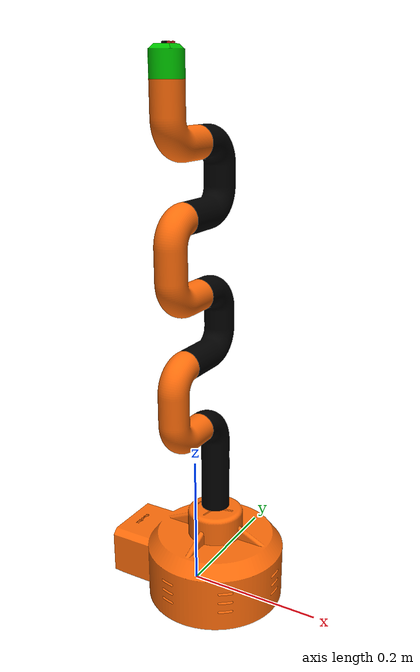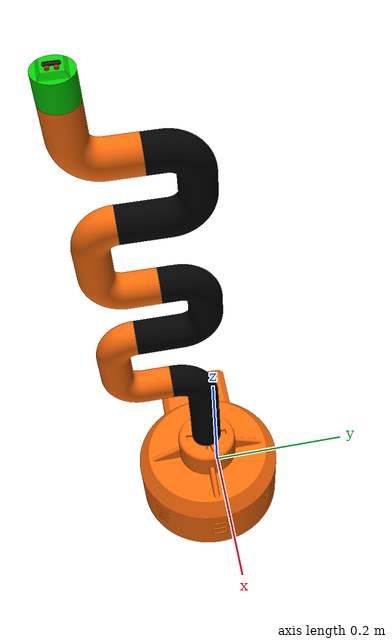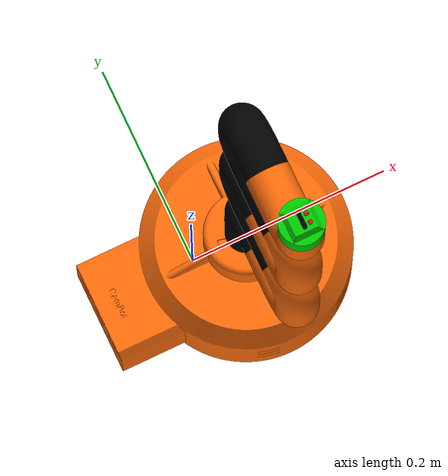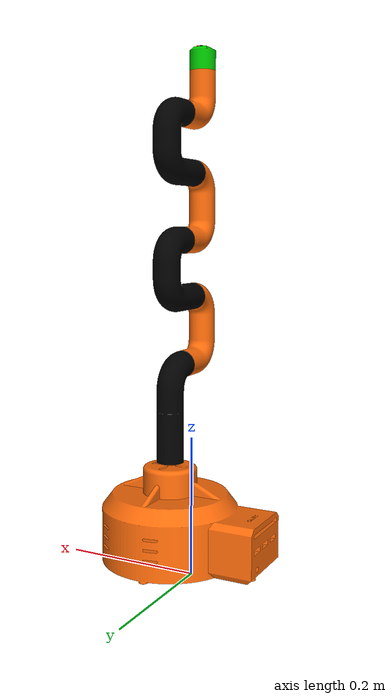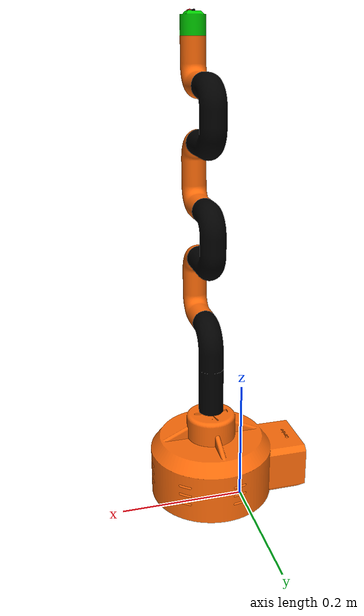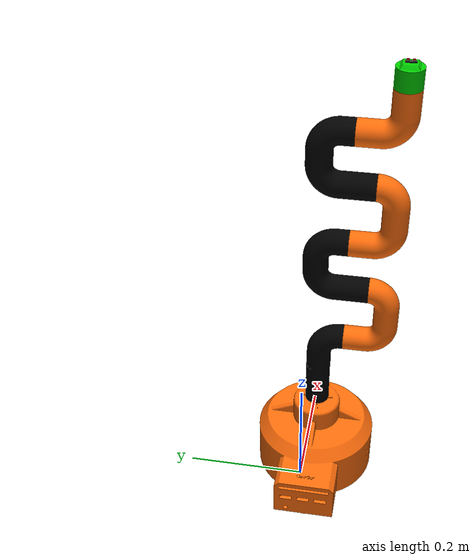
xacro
<?xml version="1.0" ?>
<robot name="cambot" xmlns:xacro="http://www.ros.org/wiki/xacro">

<xacro:include filename="$(find cambot_description)/urdf/materials.xacro" />
<xacro:include filename="$(find cambot_description)/urdf/cambot.trans" />
<xacro:include filename="$(find cambot_description)/urdf/cambot.gazebo" />

<link name="base_footprint">
</link>
<joint name="base_footprint_joint" type="fixed">
<parent link="base_footprint"/>
<child link="base_link"/>
<origin xyz="0 0 0" rpy="0 0 0"/>
</joint>

<link name="base_link">
  <inertial>
    <origin xyz="0.031870478387917095 -0.020005619593945374 0.06941706839813641" rpy="0 0 0"/>
    <mass value="2.172586468134362"/>
    <inertia ixx="0.009891" iyy="0.013269" izz="0.014819" ixy="-2e-06" iyz="-1e-06" ixz="-0.000562"/>
  </inertial>
  <visual>
    <origin xyz="0 0 0" rpy="0 0 0"/>
    <geometry>
      <mesh filename="file://$(find cambot_description)/meshes/base_link.stl" scale="0.001 0.001 0.001"/>
    </geometry>
    <material name="orange"/>
  </visual>
  <collision>
    <origin xyz="0 0 0" rpy="0 0 0"/>
    <geometry>
      <mesh filename="file://$(find cambot_description)/meshes/base_link.stl" scale="0.001 0.001 0.001"/>
    </geometry>
  </collision>
</link>

<link name="shoulder_1">
  <inertial>
    <origin xyz="-2.430504438544201e-07 -0.004991671159117982 0.056237622393101955" rpy="0 0 0"/>
    <mass value="0.18433349119517356"/>
    <inertia ixx="0.000405" iyy="0.00039" izz="5.3e-05" ixy="0.0" iyz="5.2e-05" ixz="-0.0"/>
  </inertial>
  <visual>
    <origin xyz="-0.045826 0.02 -0.18" rpy="0 0 0"/>
    <geometry>
      <mesh filename="file://$(find cambot_description)/meshes/shoulder_1.stl" scale="0.001 0.001 0.001"/>
    </geometry>
    <material name="black"/>
  </visual>
  <collision>
    <origin xyz="-0.045826 0.02 -0.18" rpy="0 0 0"/>
    <geometry>
      <mesh filename="file://$(find cambot_description)/meshes/shoulder_1.stl" scale="0.001 0.001 0.001"/>
    </geometry>
  </collision>
</link>

<link name="elbow_1">
  <inertial>
    <origin xyz="-2.43050441571524e-07 -0.04031131608347646 0.03975245049583381" rpy="0 0 0"/>
    <mass value="0.19120204614626873"/>
    <inertia ixx="0.000366" iyy="0.000305" izz="9.9e-05" ixy="-0.0" iyz="6.4e-05" ixz="0.0"/>
  </inertial>
  <visual>
    <origin xyz="-0.045826 0.07 -0.295" rpy="0 0 0"/>
    <geometry>
      <mesh filename="file://$(find cambot_description)/meshes/elbow_1.stl" scale="0.001 0.001 0.001"/>
    </geometry>
    <material name="orange"/>
  </visual>
  <collision>
    <origin xyz="-0.045826 0.07 -0.295" rpy="0 0 0"/>
    <geometry>
      <mesh filename="file://$(find cambot_description)/meshes/elbow_1.stl" scale="0.001 0.001 0.001"/>
    </geometry>
  </collision>
</link>

<link name="proximal_wrist_1">
  <inertial>
    <origin xyz="-2.4305043990618946e-07 0.05036122601814666 0.03491062753470031" rpy="0 0 0"/>
    <mass value="0.219444964102041"/>
    <inertia ixx="0.000439" iyy="0.000309" izz="0.000173" ixy="-0.0" iyz="-7.1e-05" ixz="0.0"/>
  </inertial>
  <visual>
    <origin xyz="-0.045826 0.085 -0.395" rpy="0 0 0"/>
    <geometry>
      <mesh filename="file://$(find cambot_description)/meshes/proximal_wrist_1.stl" scale="0.001 0.001 0.001"/>
    </geometry>
    <material name="black"/>
  </visual>
  <collision>
    <origin xyz="-0.045826 0.085 -0.395" rpy="0 0 0"/>
    <geometry>
      <mesh filename="file://$(find cambot_description)/meshes/proximal_wrist_1.stl" scale="0.001 0.001 0.001"/>
    </geometry>
  </collision>
</link>

<link name="intermediate_wrist_1">
  <inertial>
    <origin xyz="-2.4305044015598964e-07 -0.04031131608347617 0.039752450495832425" rpy="0 0 0"/>
    <mass value="0.1912020461462686"/>
    <inertia ixx="0.000366" iyy="0.000305" izz="9.9e-05" ixy="-0.0" iyz="6.4e-05" ixz="0.0"/>
  </inertial>
  <visual>
    <origin xyz="-0.045826 0.07 -0.48" rpy="0 0 0"/>
    <geometry>
      <mesh filename="file://$(find cambot_description)/meshes/intermediate_wrist_1.stl" scale="0.001 0.001 0.001"/>
    </geometry>
    <material name="orange"/>
  </visual>
  <collision>
    <origin xyz="-0.045826 0.07 -0.48" rpy="0 0 0"/>
    <geometry>
      <mesh filename="file://$(find cambot_description)/meshes/intermediate_wrist_1.stl" scale="0.001 0.001 0.001"/>
    </geometry>
  </collision>
</link>

<link name="distal_wrist_1">
  <inertial>
    <origin xyz="-2.4305043990618946e-07 0.05036122601814667 0.0349106275346982" rpy="0 0 0"/>
    <mass value="0.2194449641020409"/>
    <inertia ixx="0.000439" iyy="0.000309" izz="0.000173" ixy="0.0" iyz="-7.1e-05" ixz="-0.0"/>
  </inertial>
  <visual>
    <origin xyz="-0.045826 0.085 -0.58" rpy="0 0 0"/>
    <geometry>
      <mesh filename="file://$(find cambot_description)/meshes/distal_wrist_1.stl" scale="0.001 0.001 0.001"/>
    </geometry>
    <material name="black"/>
  </visual>
  <collision>
    <origin xyz="-0.045826 0.085 -0.58" rpy="0 0 0"/>
    <geometry>
      <mesh filename="file://$(find cambot_description)/meshes/distal_wrist_1.stl" scale="0.001 0.001 0.001"/>
    </geometry>
  </collision>
</link>

<link name="distal_section_1">
  <inertial>
    <origin xyz="-2.4305043969108375e-07 -0.03807586093568524 0.019860450301824484" rpy="0 0 0"/>
    <mass value="0.13796540000679278"/>
    <inertia ixx="0.000151" iyy="9.5e-05" izz="8.3e-05" ixy="-0.0" iyz="4.6e-05" ixz="-0.0"/>
  </inertial>
  <visual>
    <origin xyz="-0.045826 0.07 -0.665" rpy="0 0 0"/>
    <geometry>
      <mesh filename="file://$(find cambot_description)/meshes/distal_section_1.stl" scale="0.001 0.001 0.001"/>
    </geometry>
    <material name="orange"/>
  </visual>
  <collision>
    <origin xyz="-0.045826 0.07 -0.665" rpy="0 0 0"/>
    <geometry>
      <mesh filename="file://$(find cambot_description)/meshes/distal_section_1.stl" scale="0.001 0.001 0.001"/>
    </geometry>
  </collision>
</link>

<link name="tool_flange_1">
  <inertial>
    <origin xyz="-2.428039157509332e-07 1.232609153634101e-10 0.0062875748255590835" rpy="0 0 0"/>
    <mass value="0.036328076720912754"/>
    <inertia ixx="7e-06" iyy="7e-06" izz="7e-06" ixy="-0.0" iyz="-0.0" ixz="-0.0"/>
  </inertial>
  <visual>
    <origin xyz="-0.045826 0.125 -0.745" rpy="0 0 0"/>
    <geometry>
      <mesh filename="file://$(find cambot_description)/meshes/tool_flange_1.stl" scale="0.001 0.001 0.001"/>
    </geometry>
    <material name="green"/>
  </visual>
  <collision>
    <origin xyz="-0.045826 0.125 -0.745" rpy="0 0 0"/>
    <geometry>
      <mesh filename="file://$(find cambot_description)/meshes/tool_flange_1.stl" scale="0.001 0.001 0.001"/>
    </geometry>
  </collision>
</link>

<link name="camera_1">
  <inertial>
    <origin xyz="-2.3962317705766845e-07 3.597005395289399e-05 0.001054296634018459" rpy="0 0 0"/>
    <mass value="0.0001812213173875097"/>
    <inertia ixx="0.0" iyy="0.0" izz="0.0" ixy="-0.0" iyz="-0.0" ixz="-0.0"/>
  </inertial>
  <visual>
    <origin xyz="-0.045826 0.125 -0.77" rpy="0 0 0"/>
    <geometry>
      <mesh filename="file://$(find cambot_description)/meshes/camera_1.stl" scale="0.001 0.001 0.001"/>
    </geometry>
    <material name="black"/>
  </visual>
  <collision>
    <origin xyz="-0.045826 0.125 -0.77" rpy="0 0 0"/>
    <geometry>
      <mesh filename="file://$(find cambot_description)/meshes/camera_1.stl" scale="0.001 0.001 0.001"/>
    </geometry>
  </collision>
</link>

<joint name="camera_optical_joint" type="fixed">
<origin xyz="0 0 0" rpy="${-pi/2} 0 ${-pi/2}" />
<parent link="camera_1" />
<child link="camera_link_optical" />
</joint>
<link name="camera_link_optical"></link>

<link name="left_strcamera_1">
  <inertial>
    <origin xyz="-0.5340002394741429 -0.005999998286366576 0.43022693608457757" rpy="0 0 0"/>
    <mass value="0.0002297800954592406"/>
    <inertia ixx="0.0" iyy="0.0" izz="0.0" ixy="-0.0" iyz="-0.0" ixz="0.0"/>
  </inertial>
  <visual>
    <origin xyz="-0.585826 0.115 -0.340826" rpy="0 0 0"/>
    <geometry>
      <mesh filename="file://$(find cambot_description)/meshes/left_strcamera_1.stl" scale="0.001 0.001 0.001"/>
    </geometry>
    <material name="red"/>
  </visual>
  <collision>
    <origin xyz="-0.585826 0.115 -0.340826" rpy="0 0 0"/>
    <geometry>
      <mesh filename="file://$(find cambot_description)/meshes/left_strcamera_1.stl" scale="0.001 0.001 0.001"/>
    </geometry>
  </collision>
</link>

<link name="right_strcamera_1">
  <inertial>
    <origin xyz="-0.5340002394741429 -0.013999998286366513 0.43022693608457757" rpy="0 0 0"/>
    <mass value="0.0002297800954592406"/>
    <inertia ixx="0.0" iyy="0.0" izz="0.0" ixy="0.0" iyz="-0.0" ixz="-0.0"/>
  </inertial>
  <visual>
    <origin xyz="-0.585826 0.115 -0.340826" rpy="0 0 0"/>
    <geometry>
      <mesh filename="file://$(find cambot_description)/meshes/right_strcamera_1.stl" scale="0.001 0.001 0.001"/>
    </geometry>
    <material name="red"/>
  </visual>
  <collision>
    <origin xyz="-0.585826 0.115 -0.340826" rpy="0 0 0"/>
    <geometry>
      <mesh filename="file://$(find cambot_description)/meshes/right_strcamera_1.stl" scale="0.001 0.001 0.001"/>
    </geometry>
  </collision>
</link>

<joint name="base_joint" type="continuous">
  <origin xyz="0.045826 -0.02 0.18" rpy="0 0 0"/>
  <parent link="base_link"/>
  <child link="shoulder_1"/>
  <axis xyz="0.0 0.0 1.0"/>
</joint>

<joint name="shoulder_joint" type="revolute">
  <origin xyz="0.0 -0.05 0.115" rpy="0 0 0"/>
  <parent link="shoulder_1"/>
  <child link="elbow_1"/>
  <axis xyz="-0.0 -1.0 0.0"/>
  <limit upper="1.570796" lower="-1.570796" effort="100" velocity="100"/>
</joint>

<joint name="elbow_joint" type="revolute">
  <origin xyz="0.0 -0.015 0.1" rpy="0 0 0"/>
  <parent link="elbow_1"/>
  <child link="proximal_wrist_1"/>
  <axis xyz="0.0 1.0 -0.0"/>
  <limit upper="0.872665" lower="-0.872665" effort="100" velocity="100"/>
</joint>

<joint name="proximal_wrist_joint" type="revolute">
  <origin xyz="0.0 0.015 0.085" rpy="0 0 0"/>
  <parent link="proximal_wrist_1"/>
  <child link="intermediate_wrist_1"/>
  <axis xyz="-0.0 -1.0 -0.0"/>
  <limit upper="1.047198" lower="-1.047198" effort="100" velocity="100"/>
</joint>

<joint name="inter_wrist_joint" type="revolute">
  <origin xyz="0.0 -0.015 0.1" rpy="0 0 0"/>
  <parent link="intermediate_wrist_1"/>
  <child link="distal_wrist_1"/>
  <axis xyz="0.0 1.0 0.0"/>
  <limit upper="1.570796" lower="-1.570796" effort="100" velocity="100"/>
</joint>

<joint name="distal_wrist_joint" type="revolute">
  <origin xyz="0.0 0.015 0.085" rpy="0 0 0"/>
  <parent link="distal_wrist_1"/>
  <child link="distal_section_1"/>
  <axis xyz="-0.0 -1.0 -0.0"/>
  <limit upper="1.570796" lower="-1.570796" effort="100" velocity="100"/>
</joint>

<joint name="tool_joint" type="continuous">
  <origin xyz="0.0 -0.055 0.08" rpy="0 0 0"/>
  <parent link="distal_section_1"/>
  <child link="tool_flange_1"/>
  <axis xyz="0.0 -0.0 1.0"/>
</joint>

<joint name="camera_joint" type="fixed">
  <origin xyz="0.0 0.0 0.025" rpy="0 0 0"/>
  <parent link="tool_flange_1"/>
  <child link="camera_1"/>
</joint>

<joint name="leftstrcamera_joint" type="fixed">
  <origin xyz="0.54 0.01 -0.404174" rpy="0 0 0"/>
  <parent link="tool_flange_1"/>
  <child link="left_strcamera_1"/>
</joint>

<joint name="rightstrcamera_joint" type="fixed">
  <origin xyz="0.54 0.01 -0.404174" rpy="0 0 0"/>
  <parent link="tool_flange_1"/>
  <child link="right_strcamera_1"/>
</joint>

</robot>

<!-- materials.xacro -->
<robot name="cambot" xmlns:xacro="http://www.ros.org/wiki/xacro" >

 <material name="silver">
  <color rgba="0.700 0.700 0.700 1.000"/>
 </material>
<material name="black">
    <color rgba="0.0 0.0 0.0 1.0"/>
  </material>
  <material name="blue">
    <color rgba="0.203125 0.23828125 0.28515625 1.0"/>
  </material>
  <material name="green">
    <color rgba="0.0 0.8 0.0 1.0"/>
  </material>
  <material name="grey">
    <color rgba="0.2 0.2 0.2 1.0"/>
  </material>
  <material name="orange">
    <color rgba="1.0 0.423529411765 0.0392156862745 1.0"/>
  </material>
  <material name="brown">
    <color rgba="0.870588235294 0.811764705882 0.764705882353 1.0"/>
  </material>
  <material name="red">
    <color rgba="0.80078125 0.12890625 0.1328125 1.0"/>
  </material>
  <material name="white">
    <color rgba="1.0 1.0 1.0 1.0"/>
  </material>

</robot>
